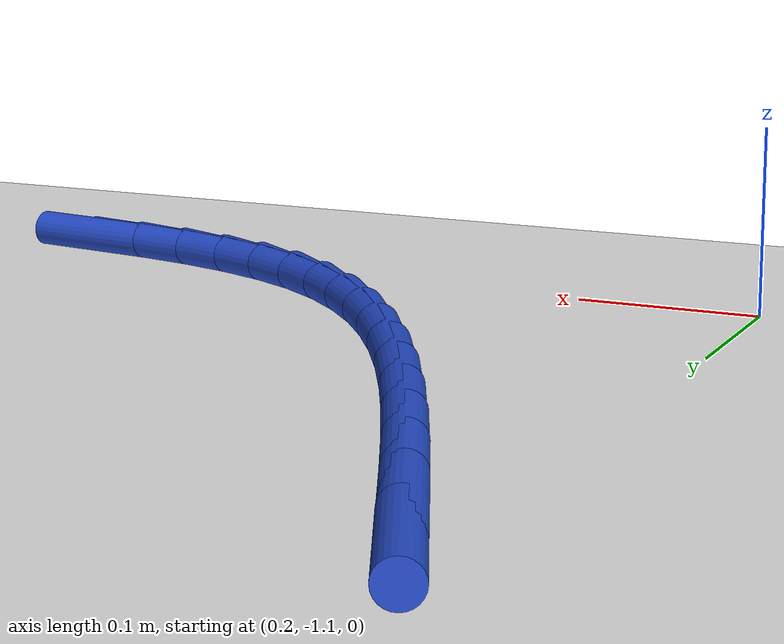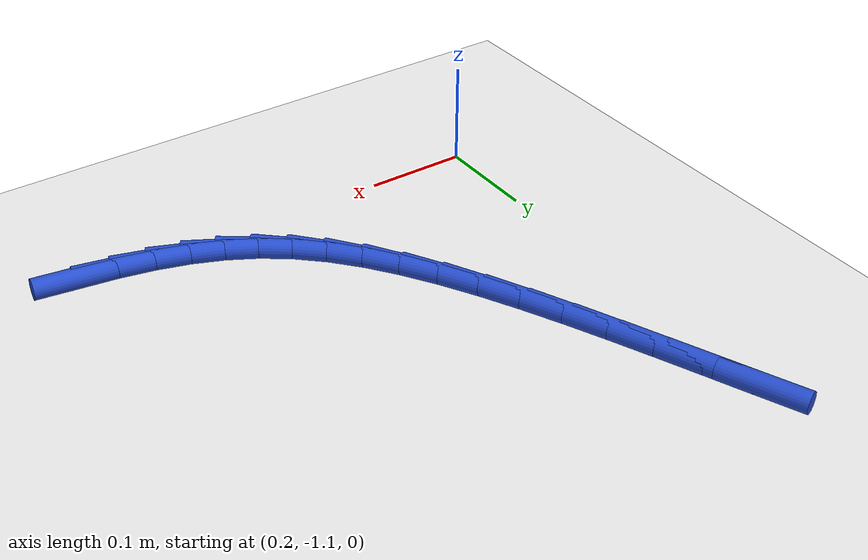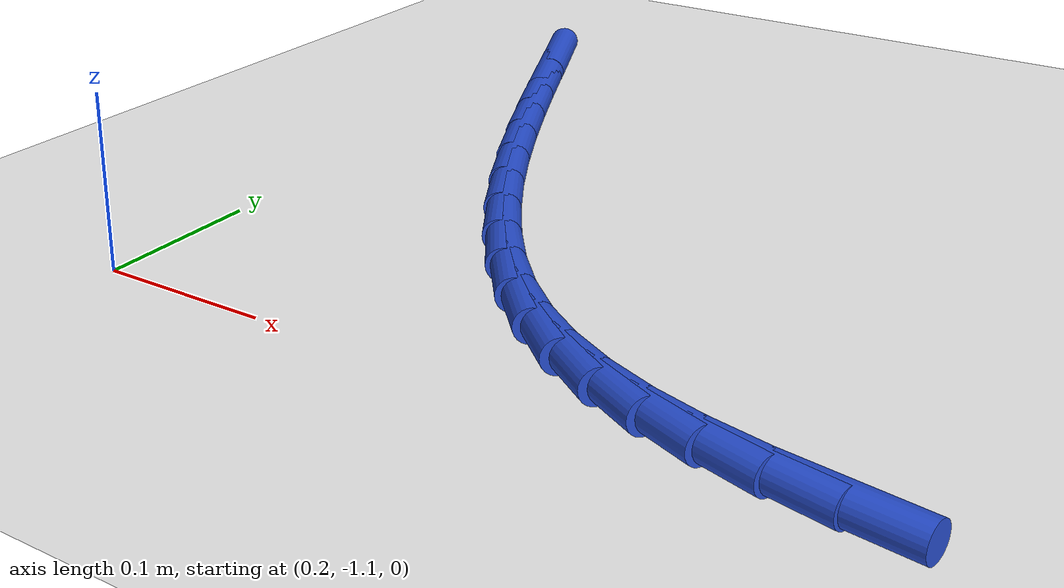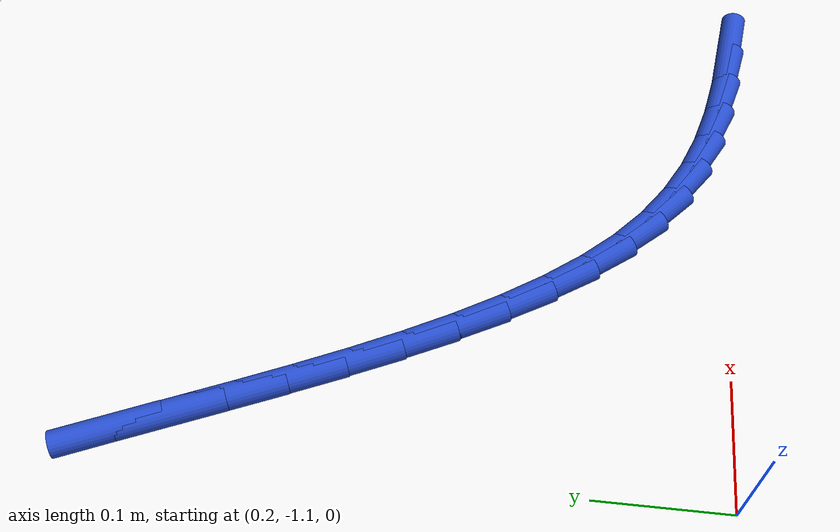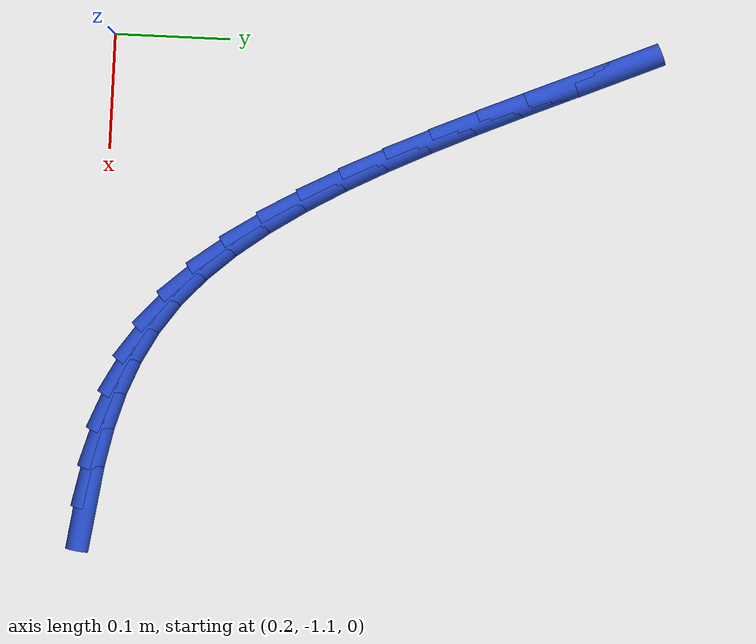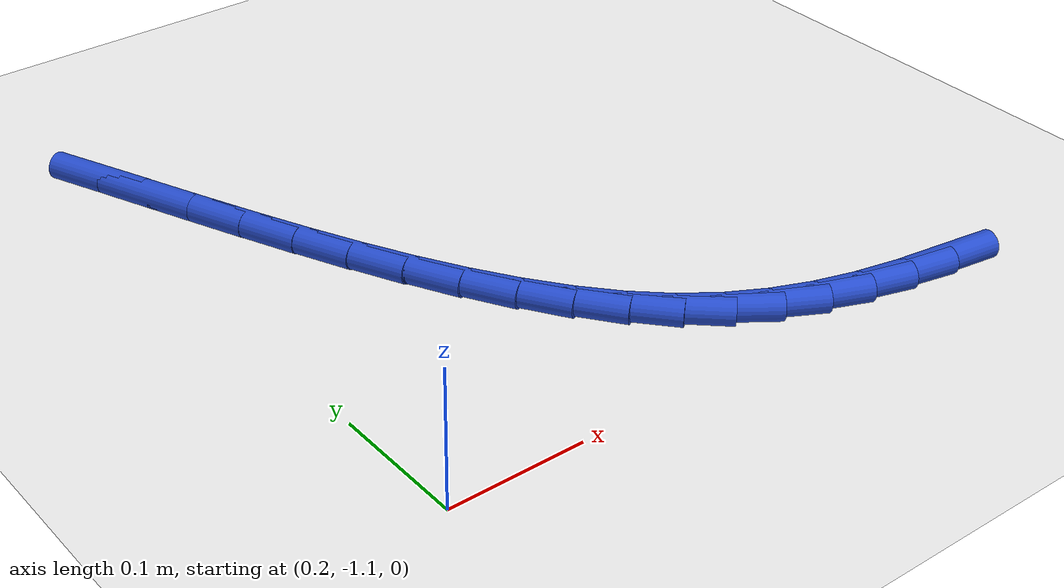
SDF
<sdf version="1.6">
 <world name="default">
  <model name="ground_plane">
   <static>1</static>
   <link name="link">
    <collision name="collision">
     <geometry><plane><normal>0 0 1</normal><size>100 100</size></plane></geometry>
     <surface><friction><ode><mu>100</mu><mu2>50</mu2></ode></friction></surface>
    </collision>
    <visual name="visual">
     <cast_shadows>0</cast_shadows>
     <geometry><plane><normal>0 0 1</normal><size>100 100</size></plane></geometry>
     <material>
      <script><uri>file://media/materials/scripts/gazebo.material</uri><name>Gazebo/WhiteGlow</name></script>
     </material>
    </visual>
   </link>
  </model>
  <model name="line">
   <link name="link_186">
    <pose>0.6106295399655447 -1.1064103149615363 0.01 0 1.57 -0.14527953273241875</pose>
    <collision name="collision">
     <geometry><cylinder><radius>0.01</radius><length>0.08</length></cylinder></geometry>
    </collision>
    <visual name="visual">
     <material>
      <script><name>Gazebo/Blue</name><uri>file://media/materials/scripts/gazebo.material</uri></script>
     </material>
     <geometry><cylinder><radius>0.01</radius><length>0.08</length></cylinder></geometry>
    </visual>
   </link>
   <link name="link_187">
    <pose>0.5744536574427193 -1.1011174095451952 0.01 0 1.57 -0.21051209202438298</pose>
    <collision name="collision">
     <geometry><cylinder><radius>0.01</radius><length>0.08</length></cylinder></geometry>
    </collision>
    <visual name="visual">
     <material>
      <script><name>Gazebo/Blue</name><uri>file://media/materials/scripts/gazebo.material</uri></script>
     </material>
     <geometry><cylinder><radius>0.01</radius><length>0.08</length></cylinder></geometry>
    </visual>
   </link>
   <link name="link_188">
    <pose>0.5408034653320314 -1.0939271085373048 0.01 0 1.57 -0.2930440163929897</pose>
    <collision name="collision">
     <geometry><cylinder><radius>0.01</radius><length>0.08</length></cylinder></geometry>
    </collision>
    <visual name="visual">
     <material>
      <script><name>Gazebo/Blue</name><uri>file://media/materials/scripts/gazebo.material</uri></script>
     </material>
     <geometry><cylinder><radius>0.01</radius><length>0.08</length></cylinder></geometry>
    </visual>
   </link>
   <link name="link_189">
    <pose>0.5094748270949594 -1.0844742904034346 0.01 0 1.57 -0.39213713480444323</pose>
    <collision name="collision">
     <geometry><cylinder><radius>0.01</radius><length>0.08</length></cylinder></geometry>
    </collision>
    <visual name="visual">
     <material>
      <script><name>Gazebo/Blue</name><uri>file://media/materials/scripts/gazebo.material</uri></script>
     </material>
     <geometry><cylinder><radius>0.01</radius><length>0.08</length></cylinder></geometry>
    </visual>
   </link>
   <link name="link_190">
    <pose>0.4802636061929804 -1.0723938336091539 0.01 0 1.57 -0.5045108946086309</pose>
    <collision name="collision">
     <geometry><cylinder><radius>0.01</radius><length>0.08</length></cylinder></geometry>
    </collision>
    <visual name="visual">
     <material>
      <script><name>Gazebo/Blue</name><uri>file://media/materials/scripts/gazebo.material</uri></script>
     </material>
     <geometry><cylinder><radius>0.01</radius><length>0.08</length></cylinder></geometry>
    </visual>
   </link>
   <link name="link_191">
    <pose>0.4529656660875746 -1.0573206166200333 0.01 0 1.57 -0.6242074548848054</pose>
    <collision name="collision">
     <geometry><cylinder><radius>0.01</radius><length>0.08</length></cylinder></geometry>
    </collision>
    <visual name="visual">
     <material>
      <script><name>Gazebo/Blue</name><uri>file://media/materials/scripts/gazebo.material</uri></script>
     </material>
     <geometry><cylinder><radius>0.01</radius><length>0.08</length></cylinder></geometry>
    </visual>
   </link>
   <link name="link_192">
    <pose>0.42737687024021936 -1.0388895179016422 0.01 0 1.57 -0.7427253966210181</pose>
    <collision name="collision">
     <geometry><cylinder><radius>0.01</radius><length>0.08</length></cylinder></geometry>
    </collision>
    <visual name="visual">
     <material>
      <script><name>Gazebo/Blue</name><uri>file://media/materials/scripts/gazebo.material</uri></script>
     </material>
     <geometry><cylinder><radius>0.01</radius><length>0.08</length></cylinder></geometry>
    </visual>
   </link>
   <link name="link_193">
    <pose>0.4032966321577688 -1.0167814594599647 0.01 0 1.57 -0.845748521486724</pose>
    <collision name="collision">
     <geometry><cylinder><radius>0.01</radius><length>0.08</length></cylinder></geometry>
    </collision>
    <visual name="visual">
     <material>
      <script><name>Gazebo/Blue</name><uri>file://media/materials/scripts/gazebo.material</uri></script>
     </material>
     <geometry><cylinder><radius>0.01</radius><length>0.08</length></cylinder></geometry>
    </visual>
   </link>
   <link name="link_194">
    <pose>0.3805583888967396 -0.9911186434870152 0.01 0 1.57 -0.9293713221988787</pose>
    <collision name="collision">
     <geometry><cylinder><radius>0.01</radius><length>0.08</length></cylinder></geometry>
    </collision>
    <visual name="visual">
     <material>
      <script><name>Gazebo/Blue</name><uri>file://media/materials/scripts/gazebo.material</uri></script>
     </material>
     <geometry><cylinder><radius>0.01</radius><length>0.08</length></cylinder></geometry>
    </visual>
   </link>
   <link name="link_195">
    <pose>0.3590145151902294 -0.9622688909161713 0.01 0 1.57 -0.9963352850271129</pose>
    <collision name="collision">
     <geometry><cylinder><radius>0.01</radius><length>0.08</length></cylinder></geometry>
    </collision>
    <visual name="visual">
     <material>
      <script><name>Gazebo/Blue</name><uri>file://media/materials/scripts/gazebo.material</uri></script>
     </material>
     <geometry><cylinder><radius>0.01</radius><length>0.08</length></cylinder></geometry>
    </visual>
   </link>
   <link name="link_196">
    <pose>0.3385175899884663 -0.9306026713454467 0.01 0 1.57 -1.0493394542006316</pose>
    <collision name="collision">
     <geometry><cylinder><radius>0.01</radius><length>0.08</length></cylinder></geometry>
    </collision>
    <visual name="visual">
     <material>
      <script><name>Gazebo/Blue</name><uri>file://media/materials/scripts/gazebo.material</uri></script>
     </material>
     <geometry><cylinder><radius>0.01</radius><length>0.08</length></cylinder></geometry>
    </visual>
   </link>
   <link name="link_197">
    <pose>0.318920192241677 -0.896490454372853 0.01 0 1.57 -1.0906754761820172</pose>
    <collision name="collision">
     <geometry><cylinder><radius>0.01</radius><length>0.08</length></cylinder></geometry>
    </collision>
    <visual name="visual">
     <material>
      <script><name>Gazebo/Blue</name><uri>file://media/materials/scripts/gazebo.material</uri></script>
     </material>
     <geometry><cylinder><radius>0.01</radius><length>0.08</length></cylinder></geometry>
    </visual>
   </link>
   <link name="link_198">
    <pose>0.30007490090008837 -0.8603027095964021 0.01 0 1.57 -1.122160329405363</pose>
    <collision name="collision">
     <geometry><cylinder><radius>0.01</radius><length>0.08</length></cylinder></geometry>
    </collision>
    <visual name="visual">
     <material>
      <script><name>Gazebo/Blue</name><uri>file://media/materials/scripts/gazebo.material</uri></script>
     </material>
     <geometry><cylinder><radius>0.01</radius><length>0.08</length></cylinder></geometry>
    </visual>
   </link>
   <link name="link_199">
    <pose>0.2818342949139274 -0.8224099066141056 0.01 0 1.57 -1.1451684133826747</pose>
    <collision name="collision">
     <geometry><cylinder><radius>0.01</radius><length>0.08</length></cylinder></geometry>
    </collision>
    <visual name="visual">
     <material>
      <script><name>Gazebo/Blue</name><uri>file://media/materials/scripts/gazebo.material</uri></script>
     </material>
     <geometry><cylinder><radius>0.01</radius><length>0.08</length></cylinder></geometry>
    </visual>
   </link>
   <link name="link_200">
    <pose>0.2640509532334218 -0.7831825150239768 0.01 0 1.57 -1.160691405817107</pose>
    <collision name="collision">
     <geometry><cylinder><radius>0.01</radius><length>0.08</length></cylinder></geometry>
    </collision>
    <visual name="visual">
     <material>
      <script><name>Gazebo/Blue</name><uri>file://media/materials/scripts/gazebo.material</uri></script>
     </material>
     <geometry><cylinder><radius>0.01</radius><length>0.08</length></cylinder></geometry>
    </visual>
   </link>
   <link name="link_201">
    <pose>0.24657745480879856 -0.742991004424028 0.01 0 1.57 -1.1693954689813015</pose>
    <collision name="collision">
     <geometry><cylinder><radius>0.01</radius><length>0.08</length></cylinder></geometry>
    </collision>
    <visual name="visual">
     <material>
      <script><name>Gazebo/Blue</name><uri>file://media/materials/scripts/gazebo.material</uri></script>
     </material>
     <geometry><cylinder><radius>0.01</radius><length>0.08</length></cylinder></geometry>
    </visual>
   </link>
   <link name="link_202">
    <pose>0.22926637859028445 -0.7022058444122699 0.01 0 1.57 -1.1716649535731398</pose>
    <collision name="collision">
     <geometry><cylinder><radius>0.01</radius><length>0.08</length></cylinder></geometry>
    </collision>
    <visual name="visual">
     <material>
      <script><name>Gazebo/Blue</name><uri>file://media/materials/scripts/gazebo.material</uri></script>
     </material>
     <geometry><cylinder><radius>0.01</radius><length>0.08</length></cylinder></geometry>
    </visual>
   </link>
   <link name="link_203">
    <pose>0.21197030352810636 -0.6611975045867144 0.01 0 1.57 -1.1676298219503318</pose>
    <collision name="collision">
     <geometry><cylinder><radius>0.01</radius><length>0.08</length></cylinder></geometry>
    </collision>
    <visual name="visual">
     <material>
      <script><name>Gazebo/Blue</name><uri>file://media/materials/scripts/gazebo.material</uri></script>
     </material>
     <geometry><cylinder><radius>0.01</radius><length>0.08</length></cylinder></geometry>
    </visual>
   </link>
  </model>
 </world>
</sdf>
